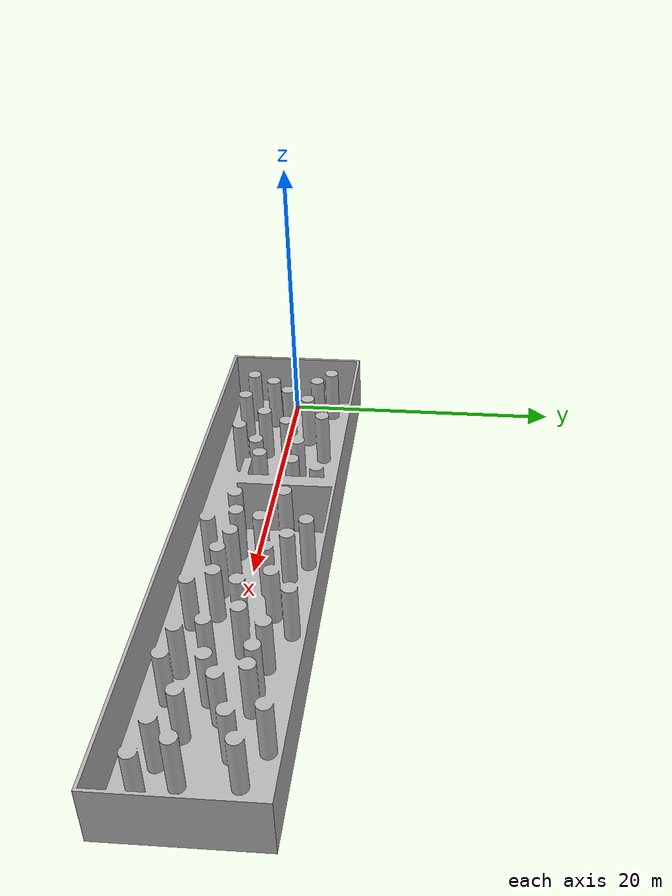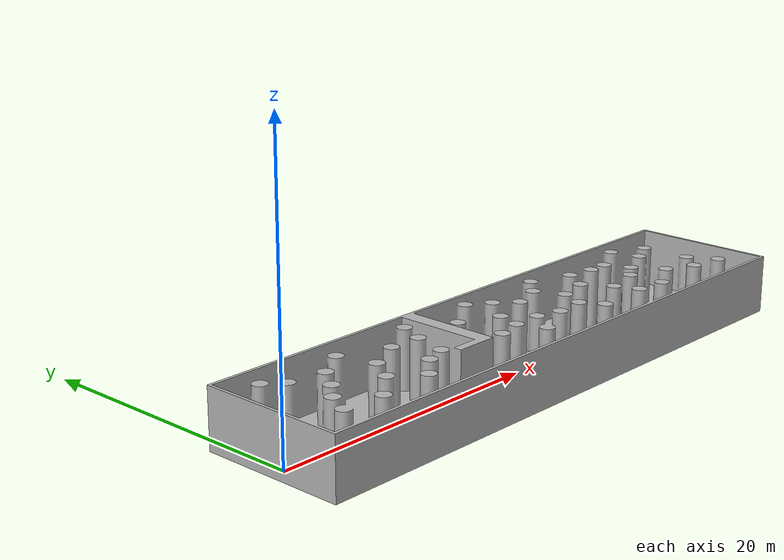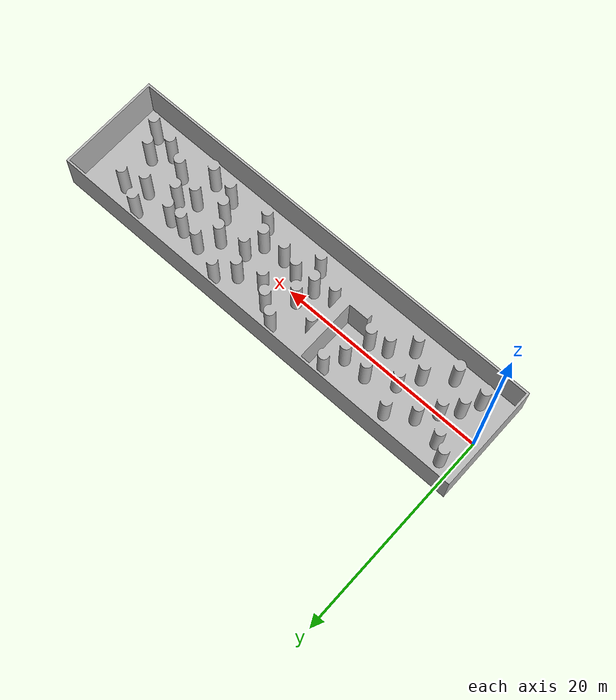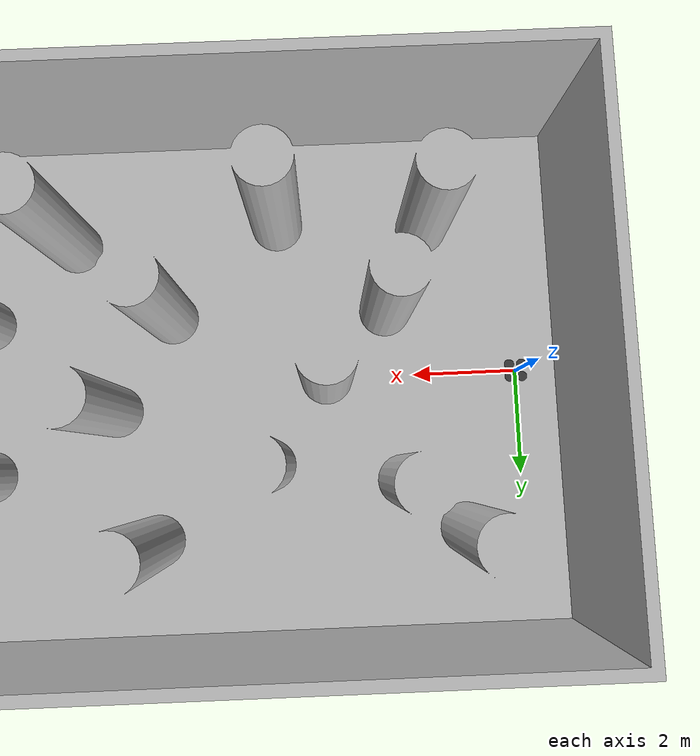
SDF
<sdf version="1.4">
 <world name="world">
  <model name="ground_plane">
   <static>1</static>
   <link name="link">
    <collision name="collision">
     <geometry><plane><normal>0 0 1</normal><size>100 100</size></plane></geometry>
     <surface><friction><ode><mu>100</mu><mu2>50</mu2></ode></friction></surface>
    </collision>
    <velocity_decay><linear>0</linear><angular>0</angular></velocity_decay>
   </link>
  </model>
  <model name="corridor">
   <static>1</static>
   <link name="body">
    <visual name="visual">
     <pose>0 -5 -0.01 0 -0 0</pose>
     <geometry><mesh><uri>model://corridor_50_wall/corridor_50_wall.dae</uri></mesh></geometry>
    </visual>
    <collision name="corridor">
     <pose>0 -5 -0.01 0 -0 0</pose>
     <geometry><mesh><uri>model://corridor_50_wall/corridor_50_wall.dae</uri></mesh></geometry>
    </collision>
    <velocity_decay><linear>0</linear><angular>0</angular></velocity_decay>
   </link>
  </model>
  <light name="sun1" type="directional">
   <pose>1 0 3 0 -0 0</pose>
   <diffuse>0.8 0.8 0.8 1</diffuse>
   <specular>0.2 0.2 0.2 1</specular>
   <attenuation>
    <range>20</range>
    <constant>0.9</constant>
    <linear>0.01</linear>
    <quadratic>0.001</quadratic>
   </attenuation>
   <direction>-0 0 -1</direction>
  </light>
  <light name="sun2" type="point">
   <pose>0 0 5 0 -0 0</pose>
   <diffuse>0.8 0.8 0.8 1</diffuse>
   <specular>0.2 0.2 0.2 1</specular>
   <attenuation>
    <range>10</range>
    <constant>0.9</constant>
    <linear>0.01</linear>
    <quadratic>0.001</quadratic>
   </attenuation>
   <direction>-0 0 -1</direction>
  </light>
  <physics type="ode">
   <max_step_size>0.001</max_step_size>
   <real_time_factor>1</real_time_factor>
   <real_time_update_rate>1000</real_time_update_rate>
   <gravity>0 0 -9.8</gravity>
  </physics>
  <scene><ambient>0.4 0.4 0.4 1</ambient><background>0.7 0.7 0.7 1</background><shadows>1</shadows></scene>
  <spherical_coordinates>
   <surface_model>EARTH_WGS84</surface_model>
   <latitude_deg>0</latitude_deg>
   <longitude_deg>0</longitude_deg>
   <elevation>0</elevation>
   <heading_deg>0</heading_deg>
  </spherical_coordinates>
  <model name="sierra">
   <link name="base_link">
    <inertial>
     <pose>2e-07 2e-07 0 0 -0 0</pose>
     <mass>0.500001</mass>
     <inertia>
      <ixx>0.00294584</ixx>
      <ixy>0.000274989</ixy>
      <ixz>8.18185e-17</ixz>
      <iyy>0.00294584</iyy>
      <iyz>-8.18185e-17</iyz>
      <izz>0.00555085</izz>
     </inertia>
    </inertial>
    <collision name="base_link_collision">
     <pose>0 0 0 0 -0 0.7854</pose>
     <geometry><box><size>0.3 0.3 0.2</size></box></geometry>
    </collision>
    <collision name="base_link_collision_camera_link">
     <pose>0.1 0.1 0 -3.14159 -0 0.785398</pose>
     <geometry>
      <mesh>
       <scale>1 1 1</scale>
       <uri>/home/sikang/ros/catkin_ws/src/quadrotor_utils/mrsl_quadrotor/mrsl_models/models/sensors/asus_camera/asus_camera.stl</uri>
      </mesh>
     </geometry>
    </collision>
    <visual name="base_link_visual">
     <geometry>
      <mesh>
       <scale>1 1 1</scale>
       <uri>/home/sikang/ros/catkin_ws/src/quadrotor_utils/mrsl_quadrotor/mrsl_models/models/hummingbird/hummingbird.dae</uri>
      </mesh>
     </geometry>
    </visual>
    <visual name="base_link_visual_camera_link">
     <pose>0.1 0.1 0 -3.14159 -0 0.785398</pose>
     <geometry>
      <mesh>
       <scale>1 1 1</scale>
       <uri>/home/sikang/ros/catkin_ws/src/quadrotor_utils/mrsl_quadrotor/mrsl_models/models/sensors/asus_camera/asus_camera.dae</uri>
      </mesh>
     </geometry>
    </visual>
    <velocity_decay><linear>0</linear><angular>0</angular></velocity_decay>
    <sensor name="camera" type="depth">
     <update_rate>30</update_rate>
     <camera name="__default__">
      <horizontal_fov>1.0472</horizontal_fov>
      <image><format>R8G8B8</format><width>640</width><height>480</height></image>
      <clip><near>0.1</near><far>6</far></clip>
     </camera>
     <plugin name="camera_camera_controller" filename="libgazebo_ros_openni_kinect.so">
      <alwaysOn>true</alwaysOn>
      <updateRate>15</updateRate>
      <imageTopicName>camera/rgb/image_raw</imageTopicName>
      <cameraInfoTopicName>camera/rgb/camera_info</cameraInfoTopicName>
      <depthImageTopicName>camera/depth/image_raw</depthImageTopicName>
      <depthImageCameraInfoTopicName>camera/depth/camera_info</depthImageCameraInfoTopicName>
      <pointCloudTopicName>camera/depth/points</pointCloudTopicName>
      <frameName>camera_depth_optical_frame</frameName>
      <distortion_k1>0.0</distortion_k1>
      <distortion_k2>0.0</distortion_k2>
      <distortion_k3>0.0</distortion_k3>
      <distortion_t1>0.0</distortion_t1>
      <distortion_t2>0.0</distortion_t2>
      <pointCloudCutoff>0.1</pointCloudCutoff>
      <pointCloudCutoffMax>9.0</pointCloudCutoffMax>
      <robotNamespace>/sierra/</robotNamespace>
     </plugin>
     <pose>0.134648 0.0653518 -1.01343e-14 -3.14159 -0 0.785398</pose>
    </sensor>
   </link>
   <static>0</static>
   <plugin name="test" filename="libmrsl_quadrotor_propulsion.so">
    <command_topic>so3_cmd</command_topic>
    <robotNamespace>/sierra/</robotNamespace>
   </plugin>
   <plugin name="quadrotor_groundtruth_sim" filename="libgazebo_ros_p3d.so">
    <updateRate>100.0</updateRate>
    <bodyName>base_link</bodyName>
    <topicName>ground_truth/odom</topicName>
    <gaussianNoise>0.0</gaussianNoise>
    <frameName>world</frameName>
    <robotNamespace>/sierra/</robotNamespace>
   </plugin>
   <plugin name="quadrotor_imu_sim" filename="libhector_gazebo_ros_imu.so">
    <updateRate>100.0</updateRate>
    <bodyName>base_link</bodyName>
    <topicName>raw_imu</topicName>
    <rpyOffsets>0 0 0</rpyOffsets>
    <gaussianNoise>0</gaussianNoise>
    <accelDrift>0.5 0.5 0.5</accelDrift>
    <accelGaussianNoise>0.35 0.35 0.3</accelGaussianNoise>
    <rateDrift>0.1 0.1 0.1</rateDrift>
    <rateGaussianNoise>0.05 0.05 0.015</rateGaussianNoise>
    <headingDrift>0.1</headingDrift>
    <headingGaussianNoise>0.05</headingGaussianNoise>
    <robotNamespace>/sierra/</robotNamespace>
   </plugin>
   <pose>-1.6e-05 -8.4e-05 0.099994 2.7e-05 -2.7e-05 -0.785078</pose>
  </model>
 </world>
</sdf>
